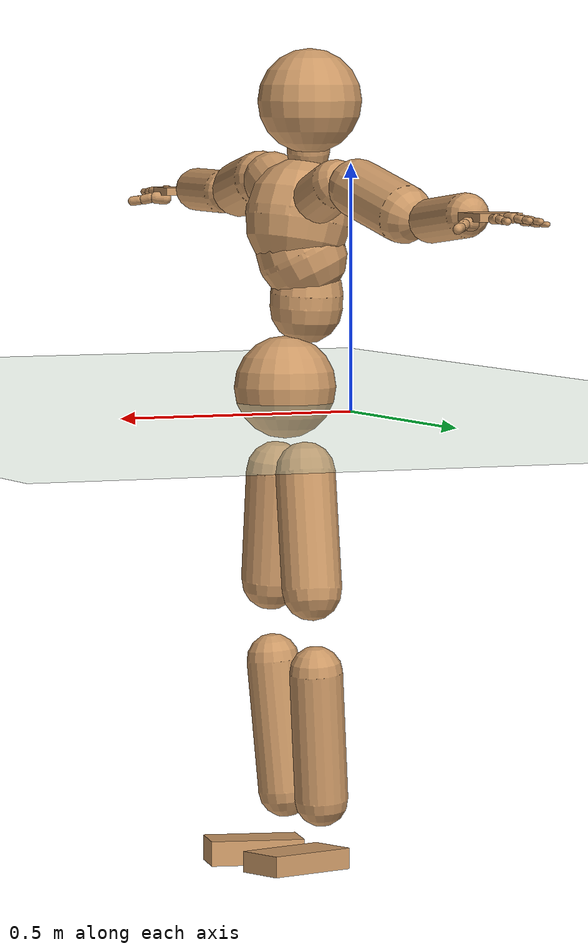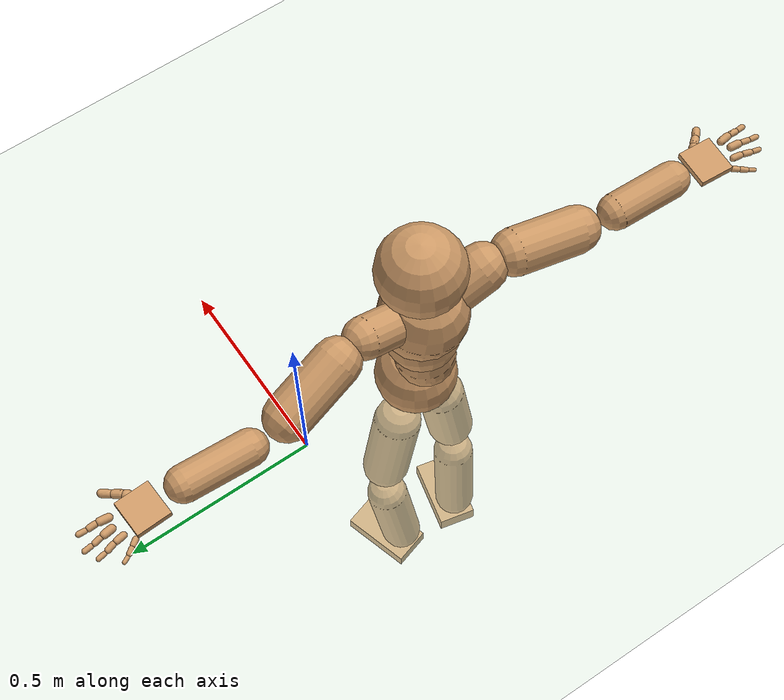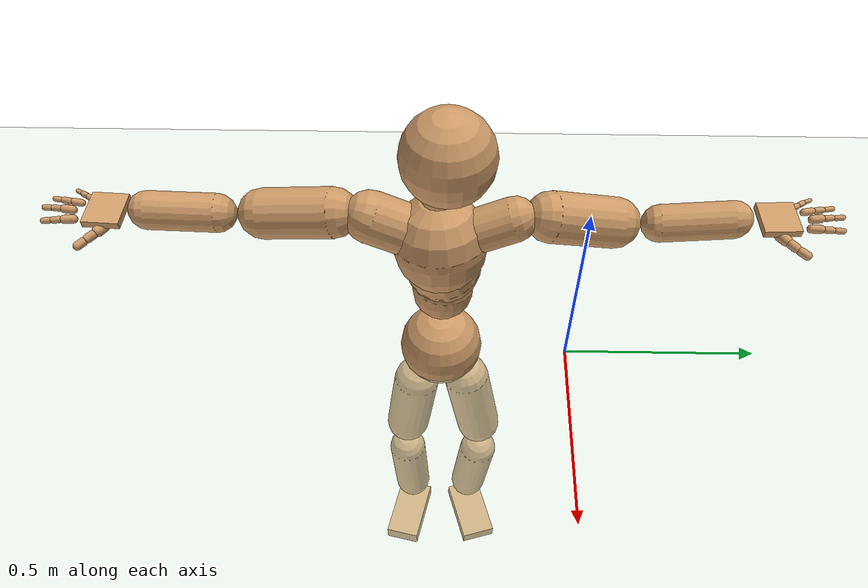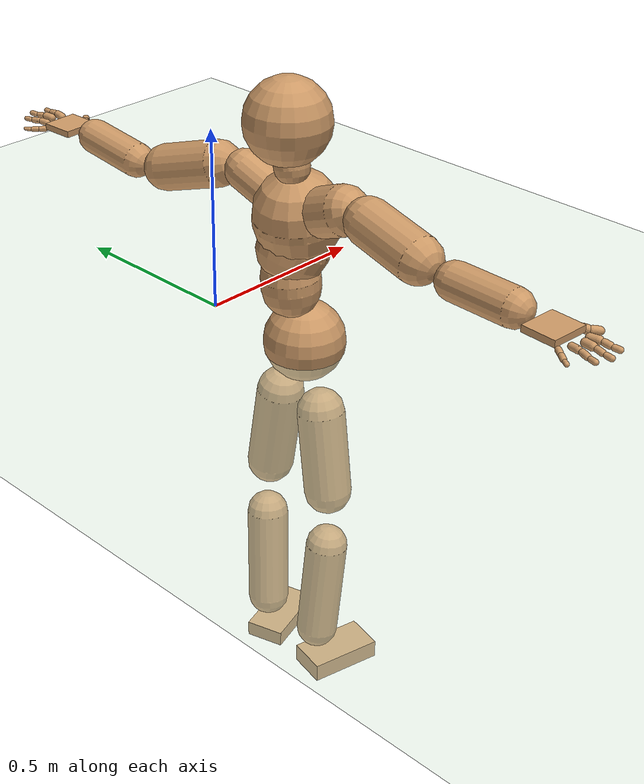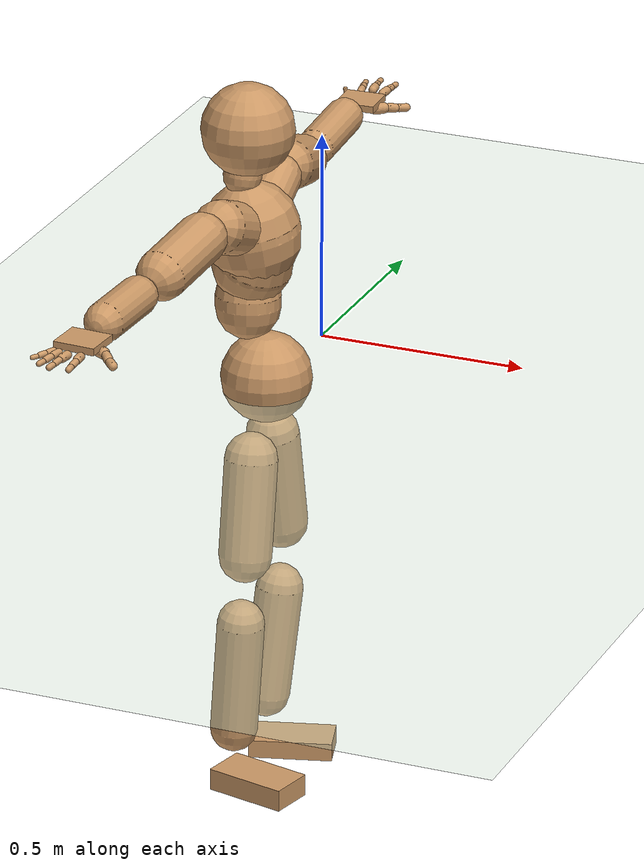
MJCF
<mujoco model="humanoid">
  <compiler coordinate="local" angle="radian"/>
  <default>
    <joint damping="0.0" armature="0.01" stiffness="0.0" limited="true"/>
    <geom conaffinity="1" condim="3" contype="7" margin="0.001" rgba="0.8 0.6 .4 1"/>
  </default>
  <asset>
    <texture type="skybox" builtin="gradient" rgb1=".4 .5 .6" rgb2="0 0 0" width="100" height="100"/>
    <texture builtin="flat" height="1278" mark="cross" markrgb="1 1 1" name="texgeom" random="0.01" rgb1="0.8 0.6 0.4" rgb2="0.8 0.6 0.4" type="cube" width="127"/>
    <texture builtin="checker" height="100" name="texplane" rgb1="0 0 0" rgb2="0.8 0.8 0.8" type="2d" width="100"/>
    <material name="MatPlane" reflectance="0.5" shininess="1" specular="1" texrepeat="60 60" texture="texplane"/>
    <material name="geom" texture="texgeom" texuniform="true"/>
  </asset>
  <worldbody>
    <light cutoff="100" diffuse="1 1 1" dir="-0 0 -1.3" directional="true" exponent="1" pos="0 0 1.3" specular=".1 .1 .1"/>
    <geom conaffinity="1" condim="3" name="floor" pos="0 0 0" rgba="0.8 0.9 0.8 1" size="100 100 .2" type="plane" material="MatPlane"/>
    <body name="Pelvis" pos="0.0016 -0.3299 0.0295">
      <freejoint name="Pelvis"/>
      <geom type="sphere" contype="1" conaffinity="1" density="500" size="0.1062" pos="0.0000 0.0000 0.0000" name="Pelvis"/>
      <body name="L_Hip" pos="-0.0162 0.056 -0.0905">
        <joint name="L_Hip_x" type="hinge" pos="0 0 0" axis="1 0 0" stiffness="800" damping="80" armature="0.02" range="-180.0000 180.0000"/>
        <joint name="L_Hip_y" type="hinge" pos="0 0 0" axis="0 1 0" stiffness="800" damping="80" armature="0.02" range="-180.0000 180.0000"/>
        <joint name="L_Hip_z" type="hinge" pos="0 0 0" axis="0 0 1" stiffness="800" damping="80" armature="0.02" range="-180.0000 180.0000"/>
        <geom type="capsule" contype="1" conaffinity="1" density="500" fromto="0.0012 0.0139 -0.0807 0.0047 0.0557 -0.3229" size="0.0621" name="L_Hip"/>
        <body name="L_Knee" pos="0.0058 0.0697 -0.4036">
          <joint name="L_Knee_x" type="hinge" pos="0 0 0" axis="1 0 0" stiffness="800" damping="80" armature="0.02" range="-180.0000 180.0000"/>
          <joint name="L_Knee_y" type="hinge" pos="0 0 0" axis="0 1 0" stiffness="800" damping="80" armature="0.02" range="-180.0000 180.0000"/>
          <joint name="L_Knee_z" type="hinge" pos="0 0 0" axis="0 0 1" stiffness="800" damping="80" armature="0.02" range="-180.0000 180.0000"/>
          <geom type="capsule" contype="1" conaffinity="1" density="500" fromto="-0.0079 -0.0086 -0.0892 -0.0315 -0.0344 -0.3567" size="0.0556" name="L_Knee"/>
          <body name="L_Ankle" pos="-0.0394 -0.0431 -0.4459">
            <joint name="L_Ankle_x" type="hinge" pos="0 0 0" axis="1 0 0" stiffness="800" damping="80" armature="0.02" range="-180.0000 180.0000"/>
            <joint name="L_Ankle_y" type="hinge" pos="0 0 0" axis="0 1 0" stiffness="800" damping="80" armature="0.02" range="-180.0000 180.0000"/>
            <joint name="L_Ankle_z" type="hinge" pos="0 0 0" axis="0 0 1" stiffness="800" damping="80" armature="0.02" range="-180.0000 180.0000"/>
            <geom type="box" contype="1" conaffinity="1" density="500" pos="0.0695 0.0205 -0.0316" size="0.0983 0.0526 0.0217" quat="0.9897 0.0000 0.0000 0.1432" name="L_Ankle"/>
            <body name="L_Toe" pos="0.1389 0.0411 -0.0632">
              <joint name="L_Toe_x" type="hinge" pos="0 0 0" axis="1 0 0" stiffness="500" damping="50" armature="0.02" range="-180.0000 180.0000"/>
              <joint name="L_Toe_y" type="hinge" pos="0 0 0" axis="0 1 0" stiffness="500" damping="50" armature="0.02" range="-180.0000 180.0000"/>
              <joint name="L_Toe_z" type="hinge" pos="0 0 0" axis="0 0 1" stiffness="500" damping="50" armature="0.02" range="-180.0000 180.0000"/>
              <geom type="box" contype="1" conaffinity="1" density="500" pos="0.0000 0.0000 0.0320" size="0.0011 0.0026 0.0011" quat="0.9890 0.0000 0.0000 0.1478" name="L_Toe"/>
            </body>
          </body>
        </body>
      </body>
      <body name="R_Hip" pos="-0.0083 -0.0583 -0.1022">
        <joint name="R_Hip_x" type="hinge" pos="0 0 0" axis="1 0 0" stiffness="800" damping="80" armature="0.02" range="-180.0000 180.0000"/>
        <joint name="R_Hip_y" type="hinge" pos="0 0 0" axis="0 1 0" stiffness="800" damping="80" armature="0.02" range="-180.0000 180.0000"/>
        <joint name="R_Hip_z" type="hinge" pos="0 0 0" axis="0 0 1" stiffness="800" damping="80" armature="0.02" range="-180.0000 180.0000"/>
        <geom type="capsule" contype="1" conaffinity="1" density="500" fromto="-0.0007 -0.0106 -0.0771 -0.0027 -0.0423 -0.3083" size="0.062" name="R_Hip"/>
        <body name="R_Knee" pos="-0.0034 -0.0529 -0.3854">
          <joint name="R_Knee_x" type="hinge" pos="0 0 0" axis="1 0 0" stiffness="800" damping="80" armature="0.02" range="-180.0000 180.0000"/>
          <joint name="R_Knee_y" type="hinge" pos="0 0 0" axis="0 1 0" stiffness="800" damping="80" armature="0.02" range="-180.0000 180.0000"/>
          <joint name="R_Knee_z" type="hinge" pos="0 0 0" axis="0 0 1" stiffness="800" damping="80" armature="0.02" range="-180.0000 180.0000"/>
          <geom type="capsule" contype="1" conaffinity="1" density="500" fromto="-0.0076 0.0030 -0.0920 -0.0303 0.0121 -0.3680" size="0.0554" name="R_Knee"/>
          <body name="R_Ankle" pos="-0.0379 0.0151 -0.46">
            <joint name="R_Ankle_x" type="hinge" pos="0 0 0" axis="1 0 0" stiffness="800" damping="80" armature="0.02" range="-180.0000 180.0000"/>
            <joint name="R_Ankle_y" type="hinge" pos="0 0 0" axis="0 1 0" stiffness="800" damping="80" armature="0.02" range="-180.0000 180.0000"/>
            <joint name="R_Ankle_z" type="hinge" pos="0 0 0" axis="0 0 1" stiffness="800" damping="80" armature="0.02" range="-180.0000 180.0000"/>
            <geom type="box" contype="1" conaffinity="1" density="500" pos="0.0731 -0.0166 -0.0308" size="0.0983 0.0526 0.026" quat="0.9938 0.0000 0.0000 -0.1115" name="R_Ankle"/>
            <body name="R_Toe" pos="0.1461 -0.0332 -0.0616">
              <joint name="R_Toe_x" type="hinge" pos="0 0 0" axis="1 0 0" stiffness="500" damping="50" armature="0.02" range="-180.0000 180.0000"/>
              <joint name="R_Toe_y" type="hinge" pos="0 0 0" axis="0 1 0" stiffness="500" damping="50" armature="0.02" range="-180.0000 180.0000"/>
              <joint name="R_Toe_z" type="hinge" pos="0 0 0" axis="0 0 1" stiffness="500" damping="50" armature="0.02" range="-180.0000 180.0000"/>
              <geom type="box" contype="1" conaffinity="1" density="500" pos="0.0000 0.0000 0.0270" size="0.001 0.0026 0.0011" quat="0.9946 0.0000 0.0000 -0.1037" name="R_Toe"/>
            </body>
          </body>
        </body>
      </body>
      <body name="Torso" pos="-0.0457 -0.0014 0.1097">
        <joint name="Torso_x" type="hinge" pos="0 0 0" axis="1 0 0" stiffness="1000" damping="100" armature="0.02" range="-180.0000 180.0000"/>
        <joint name="Torso_y" type="hinge" pos="0 0 0" axis="0 1 0" stiffness="1000" damping="100" armature="0.02" range="-180.0000 180.0000"/>
        <joint name="Torso_z" type="hinge" pos="0 0 0" axis="0 0 1" stiffness="1000" damping="100" armature="0.02" range="-180.0000 180.0000"/>
        <geom type="capsule" contype="1" conaffinity="1" density="500" fromto="-0.0010 0.0066 0.0827 -0.0006 0.0044 0.0551" size="0.0759" name="Torso"/>
        <body name="Spine" pos="-0.0016 0.0111 0.1378">
          <joint name="Spine_x" type="hinge" pos="0 0 0" axis="1 0 0" stiffness="1000" damping="100" armature="0.02" range="-180.0000 180.0000"/>
          <joint name="Spine_y" type="hinge" pos="0 0 0" axis="0 1 0" stiffness="1000" damping="100" armature="0.02" range="-180.0000 180.0000"/>
          <joint name="Spine_z" type="hinge" pos="0 0 0" axis="0 0 1" stiffness="1000" damping="100" armature="0.02" range="-180.0000 180.0000"/>
          <geom type="capsule" contype="1" conaffinity="1" density="500" fromto="0.0148 -0.0056 0.0321 0.0099 -0.0038 0.0214" size="0.0927" name="Spine"/>
          <body name="Chest" pos="0.0246 -0.0094 0.0535">
            <joint name="Chest_x" type="hinge" pos="0 0 0" axis="1 0 0" stiffness="1000" damping="100" armature="0.02" range="-180.0000 180.0000"/>
            <joint name="Chest_y" type="hinge" pos="0 0 0" axis="0 1 0" stiffness="1000" damping="100" armature="0.02" range="-180.0000 180.0000"/>
            <joint name="Chest_z" type="hinge" pos="0 0 0" axis="0 0 1" stiffness="1000" damping="100" armature="0.02" range="-180.0000 180.0000"/>
            <geom type="capsule" contype="1" conaffinity="1" density="500" fromto="-0.0107 -0.0033 0.0607 -0.0071 -0.0022 0.0405" size="0.1106" name="Chest"/>
            <body name="Neck" pos="-0.0337 -0.0113 0.157">
              <joint name="Neck_x" type="hinge" pos="0 0 0" axis="1 0 0" stiffness="500" damping="50" armature="0.02" range="-180.0000 180.0000"/>
              <joint name="Neck_y" type="hinge" pos="0 0 0" axis="0 1 0" stiffness="500" damping="50" armature="0.02" range="-180.0000 180.0000"/>
              <joint name="Neck_z" type="hinge" pos="0 0 0" axis="0 0 1" stiffness="500" damping="50" armature="0.02" range="-180.0000 180.0000"/>
              <geom type="capsule" contype="1" conaffinity="1" density="500" fromto="0.0014 0.0050 0.0265 0.0056 0.0200 0.1060" size="0.0444" name="Neck"/>
              <body name="Head" pos="0.0069 0.0251 0.1325">
                <joint name="Head_x" type="hinge" pos="0 0 0" axis="1 0 0" stiffness="500" damping="50" armature="0.02" range="-180.0000 180.0000"/>
                <joint name="Head_y" type="hinge" pos="0 0 0" axis="0 1 0" stiffness="500" damping="50" armature="0.02" range="-180.0000 180.0000"/>
                <joint name="Head_z" type="hinge" pos="0 0 0" axis="0 0 1" stiffness="500" damping="50" armature="0.02" range="-180.0000 180.0000"/>
                <geom type="sphere" contype="1" conaffinity="1" density="500" size="0.1083" pos="0.0000 0.0000 0.0000" name="Head"/>
              </body>
            </body>
            <body name="L_Thorax" pos="-0.0082 0.0449 0.073">
              <joint name="L_Thorax_x" type="hinge" pos="0 0 0" axis="1 0 0" stiffness="500" damping="50" armature="0.02" range="-180.0000 180.0000"/>
              <joint name="L_Thorax_y" type="hinge" pos="0 0 0" axis="0 1 0" stiffness="500" damping="50" armature="0.02" range="-180.0000 180.0000"/>
              <joint name="L_Thorax_z" type="hinge" pos="0 0 0" axis="0 0 1" stiffness="500" damping="50" armature="0.02" range="-180.0000 180.0000"/>
              <geom type="capsule" contype="1" conaffinity="1" density="500" fromto="-0.0022 0.0303 0.0120 -0.0088 0.1213 0.0478" size="0.0527" name="L_Thorax"/>
              <body name="L_Shoulder" pos="-0.0109 0.1516 0.0598">
                <joint name="L_Shoulder_x" type="hinge" pos="0 0 0" axis="1 0 0" stiffness="500" damping="50" armature="0.02" range="-180.0000 180.0000"/>
                <joint name="L_Shoulder_y" type="hinge" pos="0 0 0" axis="0 1 0" stiffness="500" damping="50" armature="0.02" range="-180.0000 180.0000"/>
                <joint name="L_Shoulder_z" type="hinge" pos="0 0 0" axis="0 0 1" stiffness="500" damping="50" armature="0.02" range="-180.0000 180.0000"/>
                <geom type="capsule" contype="1" conaffinity="1" density="500" fromto="-0.0106 0.0520 -0.0159 -0.0422 0.2080 -0.0635" size="0.06" name="L_Shoulder"/>
                <body name="L_Elbow" pos="-0.0528 0.26 -0.0794">
                  <joint name="L_Elbow_x" type="hinge" pos="0 0 0" axis="1 0 0" stiffness="500" damping="50" armature="0.02" range="-720.0000 720.0000"/>
                  <joint name="L_Elbow_y" type="hinge" pos="0 0 0" axis="0 1 0" stiffness="500" damping="50" armature="0.02" range="-720.0000 720.0000"/>
                  <joint name="L_Elbow_z" type="hinge" pos="0 0 0" axis="0 0 1" stiffness="500" damping="50" armature="0.02" range="-720.0000 720.0000"/>
                  <geom type="capsule" contype="1" conaffinity="1" density="500" fromto="0.0005 0.0562 0.0057 0.0022 0.2249 0.0226" size="0.0448" name="L_Elbow"/>
                  <body name="L_Wrist" pos="0.0027 0.2812 0.0283">
                    <joint name="L_Wrist_x" type="hinge" pos="0 0 0" axis="1 0 0" stiffness="300" damping="30" armature="0.02" range="-180.0000 180.0000"/>
                    <joint name="L_Wrist_y" type="hinge" pos="0 0 0" axis="0 1 0" stiffness="300" damping="30" armature="0.02" range="-180.0000 180.0000"/>
                    <joint name="L_Wrist_z" type="hinge" pos="0 0 0" axis="0 0 1" stiffness="300" damping="30" armature="0.02" range="-180.0000 180.0000"/>
                    <geom type="box" contype="1" conaffinity="1" density="500" pos="-0.0022 0.0477 -0.0052" size="0.0444 0.0475 0.0084" quat="0.7235 0.0000 0.0000 -0.6903" name="L_Wrist"/>
                    <body name="L_Index1" pos="0.0241 0.1123 -0.0071">
                      <joint name="L_Index1_x" type="hinge" pos="0 0 0" axis="1 0 0" stiffness="100" damping="10" armature="0.02" range="-180.0000 180.0000"/>
                      <joint name="L_Index1_y" type="hinge" pos="0 0 0" axis="0 1 0" stiffness="100" damping="10" armature="0.02" range="-180.0000 180.0000"/>
                      <joint name="L_Index1_z" type="hinge" pos="0 0 0" axis="0 0 1" stiffness="100" damping="10" armature="0.02" range="-180.0000 180.0000"/>
                      <geom type="capsule" contype="1" conaffinity="1" density="500" fromto="0.0008 0.0069 0.0003 0.0032 0.0276 0.0014" size="0.0101" name="L_Index1"/>
                      <body name="L_Index2" pos="0.004 0.0345 0.0017">
                        <joint name="L_Index2_x" type="hinge" pos="0 0 0" axis="1 0 0" stiffness="100" damping="10" armature="0.02" range="-180.0000 180.0000"/>
                        <joint name="L_Index2_y" type="hinge" pos="0 0 0" axis="0 1 0" stiffness="100" damping="10" armature="0.02" range="-180.0000 180.0000"/>
                        <joint name="L_Index2_z" type="hinge" pos="0 0 0" axis="0 0 1" stiffness="100" damping="10" armature="0.02" range="-180.0000 180.0000"/>
                        <geom type="capsule" contype="1" conaffinity="1" density="500" fromto="-0.0001 0.0049 -0.0006 -0.0002 0.0196 -0.0023" size="0.0082" name="L_Index2"/>
                        <body name="L_Index3" pos="-0.0003 0.0245 -0.0029">
                          <joint name="L_Index3_x" type="hinge" pos="0 0 0" axis="1 0 0" stiffness="100" damping="10" armature="0.02" range="-180.0000 180.0000"/>
                          <joint name="L_Index3_y" type="hinge" pos="0 0 0" axis="0 1 0" stiffness="100" damping="10" armature="0.02" range="-180.0000 180.0000"/>
                          <joint name="L_Index3_z" type="hinge" pos="0 0 0" axis="0 0 1" stiffness="100" damping="10" armature="0.02" range="-180.0000 180.0000"/>
                          <geom type="capsule" contype="1" conaffinity="1" density="500" fromto="0.0003 0.0053 -0.0002 0.0014 0.0212 -0.0007" size="0.0071" name="L_Index3"/>
                        </body>
                      </body>
                    </body>
                    <body name="L_Middle1" pos="-0.0018 0.1205 -0.0043">
                      <joint name="L_Middle1_x" type="hinge" pos="0 0 0" axis="1 0 0" stiffness="100" damping="10" armature="0.02" range="-180.0000 180.0000"/>
                      <joint name="L_Middle1_y" type="hinge" pos="0 0 0" axis="0 1 0" stiffness="100" damping="10" armature="0.02" range="-180.0000 180.0000"/>
                      <joint name="L_Middle1_z" type="hinge" pos="0 0 0" axis="0 0 1" stiffness="100" damping="10" armature="0.02" range="-180.0000 180.0000"/>
                      <geom type="capsule" contype="1" conaffinity="1" density="500" fromto="-0.0009 0.0066 0.0001 -0.0036 0.0266 0.0003" size="0.0102" name="L_Middle1"/>
                      <body name="L_Middle2" pos="-0.0045 0.0332 0.0004">
                        <joint name="L_Middle2_x" type="hinge" pos="0 0 0" axis="1 0 0" stiffness="100" damping="10" armature="0.02" range="-180.0000 180.0000"/>
                        <joint name="L_Middle2_y" type="hinge" pos="0 0 0" axis="0 1 0" stiffness="100" damping="10" armature="0.02" range="-180.0000 180.0000"/>
                        <joint name="L_Middle2_z" type="hinge" pos="0 0 0" axis="0 0 1" stiffness="100" damping="10" armature="0.02" range="-180.0000 180.0000"/>
                        <geom type="capsule" contype="1" conaffinity="1" density="500" fromto="-0.0009 0.0051 -0.0006 -0.0037 0.0203 -0.0023" size="0.0075" name="L_Middle2"/>
                        <body name="L_Middle3" pos="-0.0046 0.0254 -0.0029">
                          <joint name="L_Middle3_x" type="hinge" pos="0 0 0" axis="1 0 0" stiffness="100" damping="10" armature="0.02" range="-180.0000 180.0000"/>
                          <joint name="L_Middle3_y" type="hinge" pos="0 0 0" axis="0 1 0" stiffness="100" damping="10" armature="0.02" range="-180.0000 180.0000"/>
                          <joint name="L_Middle3_z" type="hinge" pos="0 0 0" axis="0 0 1" stiffness="100" damping="10" armature="0.02" range="-180.0000 180.0000"/>
                          <geom type="capsule" contype="1" conaffinity="1" density="500" fromto="-0.0005 0.0055 -0.0002 -0.0021 0.0219 -0.0007" size="0.0068" name="L_Middle3"/>
                        </body>
                      </body>
                    </body>
                    <body name="L_Pinky1" pos="-0.0468 0.0924 -0.0136">
                      <joint name="L_Pinky1_x" type="hinge" pos="0 0 0" axis="1 0 0" stiffness="100" damping="10" armature="0.02" range="-180.0000 180.0000"/>
                      <joint name="L_Pinky1_y" type="hinge" pos="0 0 0" axis="0 1 0" stiffness="100" damping="10" armature="0.02" range="-180.0000 180.0000"/>
                      <joint name="L_Pinky1_z" type="hinge" pos="0 0 0" axis="0 0 1" stiffness="100" damping="10" armature="0.02" range="-180.0000 180.0000"/>
                      <geom type="capsule" contype="1" conaffinity="1" density="500" fromto="-0.0026 0.0035 -0.0004 -0.0104 0.0141 -0.0015" size="0.0074" name="L_Pinky1"/>
                      <body name="L_Pinky2" pos="-0.0131 0.0176 -0.0018">
                        <joint name="L_Pinky2_x" type="hinge" pos="0 0 0" axis="1 0 0" stiffness="100" damping="10" armature="0.02" range="-180.0000 180.0000"/>
                        <joint name="L_Pinky2_y" type="hinge" pos="0 0 0" axis="0 1 0" stiffness="100" damping="10" armature="0.02" range="-180.0000 180.0000"/>
                        <joint name="L_Pinky2_z" type="hinge" pos="0 0 0" axis="0 0 1" stiffness="100" damping="10" armature="0.02" range="-180.0000 180.0000"/>
                        <geom type="capsule" contype="1" conaffinity="1" density="500" fromto="-0.0024 0.0034 -0.0005 -0.0096 0.0137 -0.0019" size="0.0071" name="L_Pinky2"/>
                        <body name="L_Pinky3" pos="-0.012 0.0172 -0.0024">
                          <joint name="L_Pinky3_x" type="hinge" pos="0 0 0" axis="1 0 0" stiffness="100" damping="10" armature="0.02" range="-180.0000 180.0000"/>
                          <joint name="L_Pinky3_y" type="hinge" pos="0 0 0" axis="0 1 0" stiffness="100" damping="10" armature="0.02" range="-180.0000 180.0000"/>
                          <joint name="L_Pinky3_z" type="hinge" pos="0 0 0" axis="0 0 1" stiffness="100" damping="10" armature="0.02" range="-180.0000 180.0000"/>
                          <geom type="capsule" contype="1" conaffinity="1" density="500" fromto="-0.0020 0.0038 -0.0001 -0.0080 0.0153 -0.0003" size="0.0053" name="L_Pinky3"/>
                        </body>
                      </body>
                    </body>
                    <body name="L_Ring1" pos="-0.028 0.1072 -0.0076">
                      <joint name="L_Ring1_x" type="hinge" pos="0 0 0" axis="1 0 0" stiffness="100" damping="10" armature="0.02" range="-180.0000 180.0000"/>
                      <joint name="L_Ring1_y" type="hinge" pos="0 0 0" axis="0 1 0" stiffness="100" damping="10" armature="0.02" range="-180.0000 180.0000"/>
                      <joint name="L_Ring1_z" type="hinge" pos="0 0 0" axis="0 0 1" stiffness="100" damping="10" armature="0.02" range="-180.0000 180.0000"/>
                      <geom type="capsule" contype="1" conaffinity="1" density="500" fromto="-0.0011 0.0062 0.0001 -0.0043 0.0248 0.0005" size="0.0087" name="L_Ring1"/>
                      <body name="L_Ring2" pos="-0.0053 0.031 0.0006">
                        <joint name="L_Ring2_x" type="hinge" pos="0 0 0" axis="1 0 0" stiffness="100" damping="10" armature="0.02" range="-180.0000 180.0000"/>
                        <joint name="L_Ring2_y" type="hinge" pos="0 0 0" axis="0 1 0" stiffness="100" damping="10" armature="0.02" range="-180.0000 180.0000"/>
                        <joint name="L_Ring2_z" type="hinge" pos="0 0 0" axis="0 0 1" stiffness="100" damping="10" armature="0.02" range="-180.0000 180.0000"/>
                        <geom type="capsule" contype="1" conaffinity="1" density="500" fromto="-0.0014 0.0050 -0.0005 -0.0057 0.0200 -0.0021" size="0.008" name="L_Ring2"/>
                        <body name="L_Ring3" pos="-0.0071 0.025 -0.0027">
                          <joint name="L_Ring3_x" type="hinge" pos="0 0 0" axis="1 0 0" stiffness="100" damping="10" armature="0.02" range="-180.0000 180.0000"/>
                          <joint name="L_Ring3_y" type="hinge" pos="0 0 0" axis="0 1 0" stiffness="100" damping="10" armature="0.02" range="-180.0000 180.0000"/>
                          <joint name="L_Ring3_z" type="hinge" pos="0 0 0" axis="0 0 1" stiffness="100" damping="10" armature="0.02" range="-180.0000 180.0000"/>
                          <geom type="capsule" contype="1" conaffinity="1" density="500" fromto="-0.0010 0.0054 -0.0001 -0.0041 0.0216 -0.0005" size="0.0063" name="L_Ring3"/>
                        </body>
                      </body>
                    </body>
                    <body name="L_Thumb1" pos="0.03 0.0448 -0.0191">
                      <joint name="L_Thumb1_x" type="hinge" pos="0 0 0" axis="1 0 0" stiffness="100" damping="10" armature="0.02" range="-180.0000 180.0000"/>
                      <joint name="L_Thumb1_y" type="hinge" pos="0 0 0" axis="0 1 0" stiffness="100" damping="10" armature="0.02" range="-180.0000 180.0000"/>
                      <joint name="L_Thumb1_z" type="hinge" pos="0 0 0" axis="0 0 1" stiffness="100" damping="10" armature="0.02" range="-180.0000 180.0000"/>
                      <geom type="capsule" contype="1" conaffinity="1" density="500" fromto="0.0057 0.0036 0.0004 0.0228 0.0145 0.0016" size="0.0133" name="L_Thumb1"/>
                      <body name="L_Thumb2" pos="0.0285 0.0181 0.0019">
                        <joint name="L_Thumb2_x" type="hinge" pos="0 0 0" axis="1 0 0" stiffness="100" damping="10" armature="0.02" range="-180.0000 180.0000"/>
                        <joint name="L_Thumb2_y" type="hinge" pos="0 0 0" axis="0 1 0" stiffness="100" damping="10" armature="0.02" range="-180.0000 180.0000"/>
                        <joint name="L_Thumb2_z" type="hinge" pos="0 0 0" axis="0 0 1" stiffness="100" damping="10" armature="0.02" range="-180.0000 180.0000"/>
                        <geom type="capsule" contype="1" conaffinity="1" density="500" fromto="0.0036 0.0042 -0.0011 0.0144 0.0169 -0.0045" size="0.0108" name="L_Thumb2"/>
                        <body name="L_Thumb3" pos="0.018 0.0211 -0.0056">
                          <joint name="L_Thumb3_x" type="hinge" pos="0 0 0" axis="1 0 0" stiffness="100" damping="10" armature="0.02" range="-180.0000 180.0000"/>
                          <joint name="L_Thumb3_y" type="hinge" pos="0 0 0" axis="0 1 0" stiffness="100" damping="10" armature="0.02" range="-180.0000 180.0000"/>
                          <joint name="L_Thumb3_z" type="hinge" pos="0 0 0" axis="0 0 1" stiffness="100" damping="10" armature="0.02" range="-180.0000 180.0000"/>
                          <geom type="capsule" contype="1" conaffinity="1" density="500" fromto="0.0040 0.0046 -0.0007 0.0160 0.0185 -0.0029" size="0.01" name="L_Thumb3"/>
                        </body>
                      </body>
                    </body>
                  </body>
                </body>
              </body>
            </body>
            <body name="R_Thorax" pos="-0.0114 -0.0503 0.0735">
              <joint name="R_Thorax_x" type="hinge" pos="0 0 0" axis="1 0 0" stiffness="500" damping="50" armature="0.02" range="-180.0000 180.0000"/>
              <joint name="R_Thorax_y" type="hinge" pos="0 0 0" axis="0 1 0" stiffness="500" damping="50" armature="0.02" range="-180.0000 180.0000"/>
              <joint name="R_Thorax_z" type="hinge" pos="0 0 0" axis="0 0 1" stiffness="500" damping="50" armature="0.02" range="-180.0000 180.0000"/>
              <geom type="capsule" contype="1" conaffinity="1" density="500" fromto="-0.0020 -0.0279 0.0115 -0.0081 -0.1116 0.0461" size="0.0617" name="R_Thorax"/>
              <body name="R_Shoulder" pos="-0.0102 -0.1395 0.0577">
                <joint name="R_Shoulder_x" type="hinge" pos="0 0 0" axis="1 0 0" stiffness="500" damping="50" armature="0.02" range="-180.0000 180.0000"/>
                <joint name="R_Shoulder_y" type="hinge" pos="0 0 0" axis="0 1 0" stiffness="500" damping="50" armature="0.02" range="-180.0000 180.0000"/>
                <joint name="R_Shoulder_z" type="hinge" pos="0 0 0" axis="0 0 1" stiffness="500" damping="50" armature="0.02" range="-180.0000 180.0000"/>
                <geom type="capsule" contype="1" conaffinity="1" density="500" fromto="-0.0073 -0.0559 -0.0092 -0.0294 -0.2234 -0.0370" size="0.0592" name="R_Shoulder"/>
                <body name="R_Elbow" pos="-0.0367 -0.2793 -0.0462">
                  <joint name="R_Elbow_x" type="hinge" pos="0 0 0" axis="1 0 0" stiffness="500" damping="50" armature="0.02" range="-720.0000 720.0000"/>
                  <joint name="R_Elbow_y" type="hinge" pos="0 0 0" axis="0 1 0" stiffness="500" damping="50" armature="0.02" range="-720.0000 720.0000"/>
                  <joint name="R_Elbow_z" type="hinge" pos="0 0 0" axis="0 0 1" stiffness="500" damping="50" armature="0.02" range="-720.0000 720.0000"/>
                  <geom type="capsule" contype="1" conaffinity="1" density="500" fromto="-0.0020 -0.0546 0.0001 -0.0078 -0.2185 0.0005" size="0.0459" name="R_Elbow"/>
                  <body name="R_Wrist" pos="-0.0098 -0.2732 0.0007">
                    <joint name="R_Wrist_x" type="hinge" pos="0 0 0" axis="1 0 0" stiffness="300" damping="30" armature="0.02" range="-180.0000 180.0000"/>
                    <joint name="R_Wrist_y" type="hinge" pos="0 0 0" axis="0 1 0" stiffness="300" damping="30" armature="0.02" range="-180.0000 180.0000"/>
                    <joint name="R_Wrist_z" type="hinge" pos="0 0 0" axis="0 0 1" stiffness="300" damping="30" armature="0.02" range="-180.0000 180.0000"/>
                    <geom type="box" contype="1" conaffinity="1" density="500" pos="-0.0028 -0.0474 -0.0071" size="0.0444 0.0492 0.0085" quat="0.7276 0.0000 0.0000 0.6860" name="R_Wrist"/>
                    <body name="R_Index1" pos="0.023 -0.1117 -0.011">
                      <joint name="R_Index1_x" type="hinge" pos="0 0 0" axis="1 0 0" stiffness="100" damping="10" armature="0.02" range="-180.0000 180.0000"/>
                      <joint name="R_Index1_y" type="hinge" pos="0 0 0" axis="0 1 0" stiffness="100" damping="10" armature="0.02" range="-180.0000 180.0000"/>
                      <joint name="R_Index1_z" type="hinge" pos="0 0 0" axis="0 0 1" stiffness="100" damping="10" armature="0.02" range="-180.0000 180.0000"/>
                      <geom type="capsule" contype="1" conaffinity="1" density="500" fromto="0.0008 -0.0069 0.0003 0.0032 -0.0276 0.0014" size="0.0101" name="R_Index1"/>
                      <body name="R_Index2" pos="0.004 -0.0345 0.0017">
                        <joint name="R_Index2_x" type="hinge" pos="0 0 0" axis="1 0 0" stiffness="100" damping="10" armature="0.02" range="-180.0000 180.0000"/>
                        <joint name="R_Index2_y" type="hinge" pos="0 0 0" axis="0 1 0" stiffness="100" damping="10" armature="0.02" range="-180.0000 180.0000"/>
                        <joint name="R_Index2_z" type="hinge" pos="0 0 0" axis="0 0 1" stiffness="100" damping="10" armature="0.02" range="-180.0000 180.0000"/>
                        <geom type="capsule" contype="1" conaffinity="1" density="500" fromto="-0.0001 -0.0049 -0.0006 -0.0002 -0.0196 -0.0023" size="0.0082" name="R_Index2"/>
                        <body name="R_Index3" pos="-0.0003 -0.0245 -0.0029">
                          <joint name="R_Index3_x" type="hinge" pos="0 0 0" axis="1 0 0" stiffness="100" damping="10" armature="0.02" range="-180.0000 180.0000"/>
                          <joint name="R_Index3_y" type="hinge" pos="0 0 0" axis="0 1 0" stiffness="100" damping="10" armature="0.02" range="-180.0000 180.0000"/>
                          <joint name="R_Index3_z" type="hinge" pos="0 0 0" axis="0 0 1" stiffness="100" damping="10" armature="0.02" range="-180.0000 180.0000"/>
                          <geom type="capsule" contype="1" conaffinity="1" density="500" fromto="0.0003 -0.0045 -0.0002 0.0014 -0.0180 -0.0007" size="0.0074" name="R_Index3"/>
                        </body>
                      </body>
                    </body>
                    <body name="R_Middle1" pos="-0.0029 -0.1199 -0.0082">
                      <joint name="R_Middle1_x" type="hinge" pos="0 0 0" axis="1 0 0" stiffness="100" damping="10" armature="0.02" range="-180.0000 180.0000"/>
                      <joint name="R_Middle1_y" type="hinge" pos="0 0 0" axis="0 1 0" stiffness="100" damping="10" armature="0.02" range="-180.0000 180.0000"/>
                      <joint name="R_Middle1_z" type="hinge" pos="0 0 0" axis="0 0 1" stiffness="100" damping="10" armature="0.02" range="-180.0000 180.0000"/>
                      <geom type="capsule" contype="1" conaffinity="1" density="500" fromto="-0.0009 -0.0066 0.0001 -0.0036 -0.0266 0.0003" size="0.0102" name="R_Middle1"/>
                      <body name="R_Middle2" pos="-0.0045 -0.0332 0.0004">
                        <joint name="R_Middle2_x" type="hinge" pos="0 0 0" axis="1 0 0" stiffness="100" damping="10" armature="0.02" range="-180.0000 180.0000"/>
                        <joint name="R_Middle2_y" type="hinge" pos="0 0 0" axis="0 1 0" stiffness="100" damping="10" armature="0.02" range="-180.0000 180.0000"/>
                        <joint name="R_Middle2_z" type="hinge" pos="0 0 0" axis="0 0 1" stiffness="100" damping="10" armature="0.02" range="-180.0000 180.0000"/>
                        <geom type="capsule" contype="1" conaffinity="1" density="500" fromto="-0.0009 -0.0051 -0.0006 -0.0037 -0.0203 -0.0023" size="0.0075" name="R_Middle2"/>
                        <body name="R_Middle3" pos="-0.0046 -0.0254 -0.0029">
                          <joint name="R_Middle3_x" type="hinge" pos="0 0 0" axis="1 0 0" stiffness="100" damping="10" armature="0.02" range="-180.0000 180.0000"/>
                          <joint name="R_Middle3_y" type="hinge" pos="0 0 0" axis="0 1 0" stiffness="100" damping="10" armature="0.02" range="-180.0000 180.0000"/>
                          <joint name="R_Middle3_z" type="hinge" pos="0 0 0" axis="0 0 1" stiffness="100" damping="10" armature="0.02" range="-180.0000 180.0000"/>
                          <geom type="capsule" contype="1" conaffinity="1" density="500" fromto="-0.0005 -0.0047 -0.0002 -0.0021 -0.0187 -0.0007" size="0.0071" name="R_Middle3"/>
                        </body>
                      </body>
                    </body>
                    <body name="R_Pinky1" pos="-0.0479 -0.0917 -0.0175">
                      <joint name="R_Pinky1_x" type="hinge" pos="0 0 0" axis="1 0 0" stiffness="100" damping="10" armature="0.02" range="-180.0000 180.0000"/>
                      <joint name="R_Pinky1_y" type="hinge" pos="0 0 0" axis="0 1 0" stiffness="100" damping="10" armature="0.02" range="-180.0000 180.0000"/>
                      <joint name="R_Pinky1_z" type="hinge" pos="0 0 0" axis="0 0 1" stiffness="100" damping="10" armature="0.02" range="-180.0000 180.0000"/>
                      <geom type="capsule" contype="1" conaffinity="1" density="500" fromto="-0.0026 -0.0035 -0.0004 -0.0104 -0.0141 -0.0015" size="0.0074" name="R_Pinky1"/>
                      <body name="R_Pinky2" pos="-0.0131 -0.0176 -0.0018">
                        <joint name="R_Pinky2_x" type="hinge" pos="0 0 0" axis="1 0 0" stiffness="100" damping="10" armature="0.02" range="-180.0000 180.0000"/>
                        <joint name="R_Pinky2_y" type="hinge" pos="0 0 0" axis="0 1 0" stiffness="100" damping="10" armature="0.02" range="-180.0000 180.0000"/>
                        <joint name="R_Pinky2_z" type="hinge" pos="0 0 0" axis="0 0 1" stiffness="100" damping="10" armature="0.02" range="-180.0000 180.0000"/>
                        <geom type="capsule" contype="1" conaffinity="1" density="500" fromto="-0.0024 -0.0034 -0.0005 -0.0096 -0.0137 -0.0019" size="0.0071" name="R_Pinky2"/>
                        <body name="R_Pinky3" pos="-0.012 -0.0172 -0.0024">
                          <joint name="R_Pinky3_x" type="hinge" pos="0 0 0" axis="1 0 0" stiffness="100" damping="10" armature="0.02" range="-180.0000 180.0000"/>
                          <joint name="R_Pinky3_y" type="hinge" pos="0 0 0" axis="0 1 0" stiffness="100" damping="10" armature="0.02" range="-180.0000 180.0000"/>
                          <joint name="R_Pinky3_z" type="hinge" pos="0 0 0" axis="0 0 1" stiffness="100" damping="10" armature="0.02" range="-180.0000 180.0000"/>
                          <geom type="capsule" contype="1" conaffinity="1" density="500" fromto="-0.0020 -0.0030 -0.0001 -0.0080 -0.0121 -0.0003" size="0.0056" name="R_Pinky3"/>
                        </body>
                      </body>
                    </body>
                    <body name="R_Ring1" pos="-0.0291 -0.1066 -0.0115">
                      <joint name="R_Ring1_x" type="hinge" pos="0 0 0" axis="1 0 0" stiffness="100" damping="10" armature="0.02" range="-180.0000 180.0000"/>
                      <joint name="R_Ring1_y" type="hinge" pos="0 0 0" axis="0 1 0" stiffness="100" damping="10" armature="0.02" range="-180.0000 180.0000"/>
                      <joint name="R_Ring1_z" type="hinge" pos="0 0 0" axis="0 0 1" stiffness="100" damping="10" armature="0.02" range="-180.0000 180.0000"/>
                      <geom type="capsule" contype="1" conaffinity="1" density="500" fromto="-0.0011 -0.0062 0.0001 -0.0043 -0.0248 0.0005" size="0.0087" name="R_Ring1"/>
                      <body name="R_Ring2" pos="-0.0053 -0.031 0.0006">
                        <joint name="R_Ring2_x" type="hinge" pos="0 0 0" axis="1 0 0" stiffness="100" damping="10" armature="0.02" range="-180.0000 180.0000"/>
                        <joint name="R_Ring2_y" type="hinge" pos="0 0 0" axis="0 1 0" stiffness="100" damping="10" armature="0.02" range="-180.0000 180.0000"/>
                        <joint name="R_Ring2_z" type="hinge" pos="0 0 0" axis="0 0 1" stiffness="100" damping="10" armature="0.02" range="-180.0000 180.0000"/>
                        <geom type="capsule" contype="1" conaffinity="1" density="500" fromto="-0.0014 -0.0050 -0.0005 -0.0057 -0.0200 -0.0021" size="0.008" name="R_Ring2"/>
                        <body name="R_Ring3" pos="-0.0071 -0.025 -0.0027">
                          <joint name="R_Ring3_x" type="hinge" pos="0 0 0" axis="1 0 0" stiffness="100" damping="10" armature="0.02" range="-180.0000 180.0000"/>
                          <joint name="R_Ring3_y" type="hinge" pos="0 0 0" axis="0 1 0" stiffness="100" damping="10" armature="0.02" range="-180.0000 180.0000"/>
                          <joint name="R_Ring3_z" type="hinge" pos="0 0 0" axis="0 0 1" stiffness="100" damping="10" armature="0.02" range="-180.0000 180.0000"/>
                          <geom type="capsule" contype="1" conaffinity="1" density="500" fromto="-0.0010 -0.0046 -0.0001 -0.0041 -0.0184 -0.0005" size="0.0066" name="R_Ring3"/>
                        </body>
                      </body>
                    </body>
                    <body name="R_Thumb1" pos="0.0289 -0.0441 -0.023">
                      <joint name="R_Thumb1_x" type="hinge" pos="0 0 0" axis="1 0 0" stiffness="100" damping="10" armature="0.02" range="-180.0000 180.0000"/>
                      <joint name="R_Thumb1_y" type="hinge" pos="0 0 0" axis="0 1 0" stiffness="100" damping="10" armature="0.02" range="-180.0000 180.0000"/>
                      <joint name="R_Thumb1_z" type="hinge" pos="0 0 0" axis="0 0 1" stiffness="100" damping="10" armature="0.02" range="-180.0000 180.0000"/>
                      <geom type="capsule" contype="1" conaffinity="1" density="500" fromto="0.0057 -0.0036 0.0004 0.0228 -0.0145 0.0016" size="0.0133" name="R_Thumb1"/>
                      <body name="R_Thumb2" pos="0.0285 -0.0181 0.0019">
                        <joint name="R_Thumb2_x" type="hinge" pos="0 0 0" axis="1 0 0" stiffness="100" damping="10" armature="0.02" range="-180.0000 180.0000"/>
                        <joint name="R_Thumb2_y" type="hinge" pos="0 0 0" axis="0 1 0" stiffness="100" damping="10" armature="0.02" range="-180.0000 180.0000"/>
                        <joint name="R_Thumb2_z" type="hinge" pos="0 0 0" axis="0 0 1" stiffness="100" damping="10" armature="0.02" range="-180.0000 180.0000"/>
                        <geom type="capsule" contype="1" conaffinity="1" density="500" fromto="0.0036 -0.0042 -0.0011 0.0144 -0.0169 -0.0045" size="0.0108" name="R_Thumb2"/>
                        <body name="R_Thumb3" pos="0.018 -0.0211 -0.0056">
                          <joint name="R_Thumb3_x" type="hinge" pos="0 0 0" axis="1 0 0" stiffness="100" damping="10" armature="0.02" range="-180.0000 180.0000"/>
                          <joint name="R_Thumb3_y" type="hinge" pos="0 0 0" axis="0 1 0" stiffness="100" damping="10" armature="0.02" range="-180.0000 180.0000"/>
                          <joint name="R_Thumb3_z" type="hinge" pos="0 0 0" axis="0 0 1" stiffness="100" damping="10" armature="0.02" range="-180.0000 180.0000"/>
                          <geom type="capsule" contype="1" conaffinity="1" density="500" fromto="0.0040 -0.0038 -0.0007 0.0160 -0.0153 -0.0029" size="0.0102" name="R_Thumb3"/>
                        </body>
                      </body>
                    </body>
                  </body>
                </body>
              </body>
            </body>
          </body>
        </body>
      </body>
    </body>
  </worldbody>
  <actuator>
    <motor name="L_Hip_x" joint="L_Hip_x" gear="500"/>
    <motor name="L_Hip_y" joint="L_Hip_y" gear="500"/>
    <motor name="L_Hip_z" joint="L_Hip_z" gear="500"/>
    <motor name="L_Knee_x" joint="L_Knee_x" gear="500"/>
    <motor name="L_Knee_y" joint="L_Knee_y" gear="500"/>
    <motor name="L_Knee_z" joint="L_Knee_z" gear="500"/>
    <motor name="L_Ankle_x" joint="L_Ankle_x" gear="500"/>
    <motor name="L_Ankle_y" joint="L_Ankle_y" gear="500"/>
    <motor name="L_Ankle_z" joint="L_Ankle_z" gear="500"/>
    <motor name="L_Toe_x" joint="L_Toe_x" gear="500"/>
    <motor name="L_Toe_y" joint="L_Toe_y" gear="500"/>
    <motor name="L_Toe_z" joint="L_Toe_z" gear="500"/>
    <motor name="R_Hip_x" joint="R_Hip_x" gear="500"/>
    <motor name="R_Hip_y" joint="R_Hip_y" gear="500"/>
    <motor name="R_Hip_z" joint="R_Hip_z" gear="500"/>
    <motor name="R_Knee_x" joint="R_Knee_x" gear="500"/>
    <motor name="R_Knee_y" joint="R_Knee_y" gear="500"/>
    <motor name="R_Knee_z" joint="R_Knee_z" gear="500"/>
    <motor name="R_Ankle_x" joint="R_Ankle_x" gear="500"/>
    <motor name="R_Ankle_y" joint="R_Ankle_y" gear="500"/>
    <motor name="R_Ankle_z" joint="R_Ankle_z" gear="500"/>
    <motor name="R_Toe_x" joint="R_Toe_x" gear="500"/>
    <motor name="R_Toe_y" joint="R_Toe_y" gear="500"/>
    <motor name="R_Toe_z" joint="R_Toe_z" gear="500"/>
    <motor name="Torso_x" joint="Torso_x" gear="500"/>
    <motor name="Torso_y" joint="Torso_y" gear="500"/>
    <motor name="Torso_z" joint="Torso_z" gear="500"/>
    <motor name="Spine_x" joint="Spine_x" gear="500"/>
    <motor name="Spine_y" joint="Spine_y" gear="500"/>
    <motor name="Spine_z" joint="Spine_z" gear="500"/>
    <motor name="Chest_x" joint="Chest_x" gear="500"/>
    <motor name="Chest_y" joint="Chest_y" gear="500"/>
    <motor name="Chest_z" joint="Chest_z" gear="500"/>
    <motor name="Neck_x" joint="Neck_x" gear="500"/>
    <motor name="Neck_y" joint="Neck_y" gear="500"/>
    <motor name="Neck_z" joint="Neck_z" gear="500"/>
    <motor name="Head_x" joint="Head_x" gear="500"/>
    <motor name="Head_y" joint="Head_y" gear="500"/>
    <motor name="Head_z" joint="Head_z" gear="500"/>
    <motor name="L_Thorax_x" joint="L_Thorax_x" gear="500"/>
    <motor name="L_Thorax_y" joint="L_Thorax_y" gear="500"/>
    <motor name="L_Thorax_z" joint="L_Thorax_z" gear="500"/>
    <motor name="L_Shoulder_x" joint="L_Shoulder_x" gear="500"/>
    <motor name="L_Shoulder_y" joint="L_Shoulder_y" gear="500"/>
    <motor name="L_Shoulder_z" joint="L_Shoulder_z" gear="500"/>
    <motor name="L_Elbow_x" joint="L_Elbow_x" gear="500"/>
    <motor name="L_Elbow_y" joint="L_Elbow_y" gear="500"/>
    <motor name="L_Elbow_z" joint="L_Elbow_z" gear="500"/>
    <motor name="L_Wrist_x" joint="L_Wrist_x" gear="500"/>
    <motor name="L_Wrist_y" joint="L_Wrist_y" gear="500"/>
    <motor name="L_Wrist_z" joint="L_Wrist_z" gear="500"/>
    <motor name="L_Index1_x" joint="L_Index1_x" gear="500"/>
    <motor name="L_Index1_y" joint="L_Index1_y" gear="500"/>
    <motor name="L_Index1_z" joint="L_Index1_z" gear="500"/>
    <motor name="L_Index2_x" joint="L_Index2_x" gear="500"/>
    <motor name="L_Index2_y" joint="L_Index2_y" gear="500"/>
    <motor name="L_Index2_z" joint="L_Index2_z" gear="500"/>
    <motor name="L_Index3_x" joint="L_Index3_x" gear="500"/>
    <motor name="L_Index3_y" joint="L_Index3_y" gear="500"/>
    <motor name="L_Index3_z" joint="L_Index3_z" gear="500"/>
    <motor name="L_Middle1_x" joint="L_Middle1_x" gear="500"/>
    <motor name="L_Middle1_y" joint="L_Middle1_y" gear="500"/>
    <motor name="L_Middle1_z" joint="L_Middle1_z" gear="500"/>
    <motor name="L_Middle2_x" joint="L_Middle2_x" gear="500"/>
    <motor name="L_Middle2_y" joint="L_Middle2_y" gear="500"/>
    <motor name="L_Middle2_z" joint="L_Middle2_z" gear="500"/>
    <motor name="L_Middle3_x" joint="L_Middle3_x" gear="500"/>
    <motor name="L_Middle3_y" joint="L_Middle3_y" gear="500"/>
    <motor name="L_Middle3_z" joint="L_Middle3_z" gear="500"/>
    <motor name="L_Pinky1_x" joint="L_Pinky1_x" gear="500"/>
    <motor name="L_Pinky1_y" joint="L_Pinky1_y" gear="500"/>
    <motor name="L_Pinky1_z" joint="L_Pinky1_z" gear="500"/>
    <motor name="L_Pinky2_x" joint="L_Pinky2_x" gear="500"/>
    <motor name="L_Pinky2_y" joint="L_Pinky2_y" gear="500"/>
    <motor name="L_Pinky2_z" joint="L_Pinky2_z" gear="500"/>
    <motor name="L_Pinky3_x" joint="L_Pinky3_x" gear="500"/>
    <motor name="L_Pinky3_y" joint="L_Pinky3_y" gear="500"/>
    <motor name="L_Pinky3_z" joint="L_Pinky3_z" gear="500"/>
    <motor name="L_Ring1_x" joint="L_Ring1_x" gear="500"/>
    <motor name="L_Ring1_y" joint="L_Ring1_y" gear="500"/>
    <motor name="L_Ring1_z" joint="L_Ring1_z" gear="500"/>
    <motor name="L_Ring2_x" joint="L_Ring2_x" gear="500"/>
    <motor name="L_Ring2_y" joint="L_Ring2_y" gear="500"/>
    <motor name="L_Ring2_z" joint="L_Ring2_z" gear="500"/>
    <motor name="L_Ring3_x" joint="L_Ring3_x" gear="500"/>
    <motor name="L_Ring3_y" joint="L_Ring3_y" gear="500"/>
    <motor name="L_Ring3_z" joint="L_Ring3_z" gear="500"/>
    <motor name="L_Thumb1_x" joint="L_Thumb1_x" gear="500"/>
    <motor name="L_Thumb1_y" joint="L_Thumb1_y" gear="500"/>
    <motor name="L_Thumb1_z" joint="L_Thumb1_z" gear="500"/>
    <motor name="L_Thumb2_x" joint="L_Thumb2_x" gear="500"/>
    <motor name="L_Thumb2_y" joint="L_Thumb2_y" gear="500"/>
    <motor name="L_Thumb2_z" joint="L_Thumb2_z" gear="500"/>
    <motor name="L_Thumb3_x" joint="L_Thumb3_x" gear="500"/>
    <motor name="L_Thumb3_y" joint="L_Thumb3_y" gear="500"/>
    <motor name="L_Thumb3_z" joint="L_Thumb3_z" gear="500"/>
    <motor name="R_Thorax_x" joint="R_Thorax_x" gear="500"/>
    <motor name="R_Thorax_y" joint="R_Thorax_y" gear="500"/>
    <motor name="R_Thorax_z" joint="R_Thorax_z" gear="500"/>
    <motor name="R_Shoulder_x" joint="R_Shoulder_x" gear="500"/>
    <motor name="R_Shoulder_y" joint="R_Shoulder_y" gear="500"/>
    <motor name="R_Shoulder_z" joint="R_Shoulder_z" gear="500"/>
    <motor name="R_Elbow_x" joint="R_Elbow_x" gear="500"/>
    <motor name="R_Elbow_y" joint="R_Elbow_y" gear="500"/>
    <motor name="R_Elbow_z" joint="R_Elbow_z" gear="500"/>
    <motor name="R_Wrist_x" joint="R_Wrist_x" gear="500"/>
    <motor name="R_Wrist_y" joint="R_Wrist_y" gear="500"/>
    <motor name="R_Wrist_z" joint="R_Wrist_z" gear="500"/>
    <motor name="R_Index1_x" joint="R_Index1_x" gear="500"/>
    <motor name="R_Index1_y" joint="R_Index1_y" gear="500"/>
    <motor name="R_Index1_z" joint="R_Index1_z" gear="500"/>
    <motor name="R_Index2_x" joint="R_Index2_x" gear="500"/>
    <motor name="R_Index2_y" joint="R_Index2_y" gear="500"/>
    <motor name="R_Index2_z" joint="R_Index2_z" gear="500"/>
    <motor name="R_Index3_x" joint="R_Index3_x" gear="500"/>
    <motor name="R_Index3_y" joint="R_Index3_y" gear="500"/>
    <motor name="R_Index3_z" joint="R_Index3_z" gear="500"/>
    <motor name="R_Middle1_x" joint="R_Middle1_x" gear="500"/>
    <motor name="R_Middle1_y" joint="R_Middle1_y" gear="500"/>
    <motor name="R_Middle1_z" joint="R_Middle1_z" gear="500"/>
    <motor name="R_Middle2_x" joint="R_Middle2_x" gear="500"/>
    <motor name="R_Middle2_y" joint="R_Middle2_y" gear="500"/>
    <motor name="R_Middle2_z" joint="R_Middle2_z" gear="500"/>
    <motor name="R_Middle3_x" joint="R_Middle3_x" gear="500"/>
    <motor name="R_Middle3_y" joint="R_Middle3_y" gear="500"/>
    <motor name="R_Middle3_z" joint="R_Middle3_z" gear="500"/>
    <motor name="R_Pinky1_x" joint="R_Pinky1_x" gear="500"/>
    <motor name="R_Pinky1_y" joint="R_Pinky1_y" gear="500"/>
    <motor name="R_Pinky1_z" joint="R_Pinky1_z" gear="500"/>
    <motor name="R_Pinky2_x" joint="R_Pinky2_x" gear="500"/>
    <motor name="R_Pinky2_y" joint="R_Pinky2_y" gear="500"/>
    <motor name="R_Pinky2_z" joint="R_Pinky2_z" gear="500"/>
    <motor name="R_Pinky3_x" joint="R_Pinky3_x" gear="500"/>
    <motor name="R_Pinky3_y" joint="R_Pinky3_y" gear="500"/>
    <motor name="R_Pinky3_z" joint="R_Pinky3_z" gear="500"/>
    <motor name="R_Ring1_x" joint="R_Ring1_x" gear="500"/>
    <motor name="R_Ring1_y" joint="R_Ring1_y" gear="500"/>
    <motor name="R_Ring1_z" joint="R_Ring1_z" gear="500"/>
    <motor name="R_Ring2_x" joint="R_Ring2_x" gear="500"/>
    <motor name="R_Ring2_y" joint="R_Ring2_y" gear="500"/>
    <motor name="R_Ring2_z" joint="R_Ring2_z" gear="500"/>
    <motor name="R_Ring3_x" joint="R_Ring3_x" gear="500"/>
    <motor name="R_Ring3_y" joint="R_Ring3_y" gear="500"/>
    <motor name="R_Ring3_z" joint="R_Ring3_z" gear="500"/>
    <motor name="R_Thumb1_x" joint="R_Thumb1_x" gear="500"/>
    <motor name="R_Thumb1_y" joint="R_Thumb1_y" gear="500"/>
    <motor name="R_Thumb1_z" joint="R_Thumb1_z" gear="500"/>
    <motor name="R_Thumb2_x" joint="R_Thumb2_x" gear="500"/>
    <motor name="R_Thumb2_y" joint="R_Thumb2_y" gear="500"/>
    <motor name="R_Thumb2_z" joint="R_Thumb2_z" gear="500"/>
    <motor name="R_Thumb3_x" joint="R_Thumb3_x" gear="500"/>
    <motor name="R_Thumb3_y" joint="R_Thumb3_y" gear="500"/>
    <motor name="R_Thumb3_z" joint="R_Thumb3_z" gear="500"/>
  </actuator>
  <contact>
    <exclude body1="Torso" body2="Chest"/>
    <exclude body1="Head" body2="Chest"/>
    <exclude body1="R_Knee" body2="R_Toe"/>
    <exclude body1="R_Knee" body2="L_Ankle"/>
    <exclude body1="R_Knee" body2="L_Toe"/>
    <exclude body1="L_Knee" body2="L_Toe"/>
    <exclude body1="L_Knee" body2="R_Ankle"/>
    <exclude body1="L_Knee" body2="R_Toe"/>
    <exclude body1="L_Shoulder" body2="Chest"/>
    <exclude body1="R_Shoulder" body2="Chest"/>
  </contact>
  <sensor/>
  <size njmax="700" nconmax="700"/>
</mujoco>
